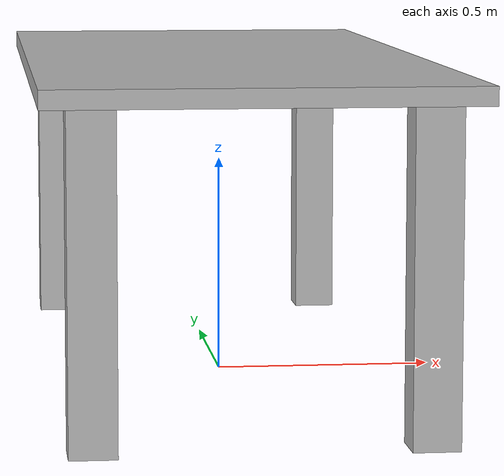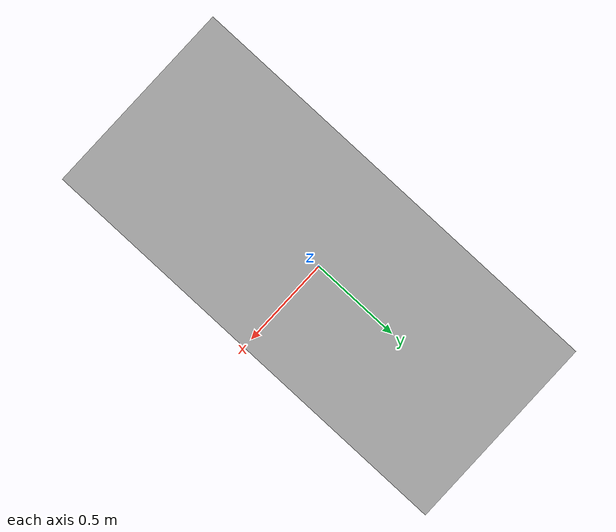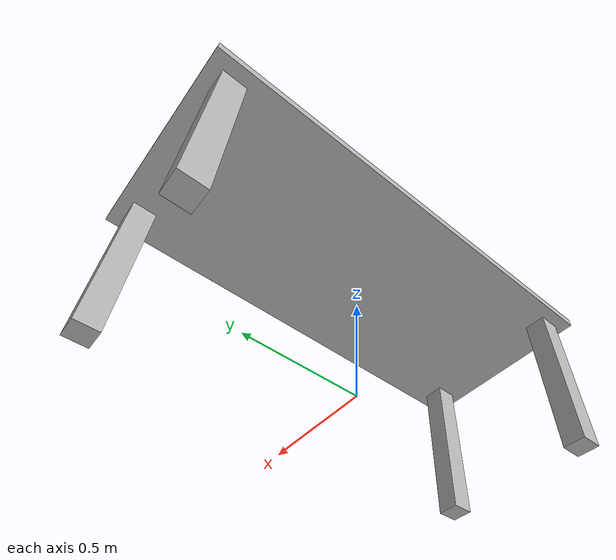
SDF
<?xml version="1.0" ?>
<sdf version="1.6">
  <model name="rwc2024/desk">
    <static>true</static>
    <link name="1_link">
      <collision name="1_col">
        <geometry>
          <box>
            <size>0.905 2.015 0.04</size>
          </box>
        </geometry>
      </collision>
      <visual name="1_vis">
        <geometry>
          <box>
            <size>0.905 2.015 0.04</size>
          </box>
        </geometry>
      </visual>
      <pose>0.0 0.0 0.725 0 0 0</pose>
    </link>
    <link name="2_link">
      <collision name="2_col">
        <geometry>
          <box>
            <size>0.1 0.1 0.705</size>
          </box>
        </geometry>
      </collision>
      <visual name="2_vis">
        <geometry>
          <box>
            <size>0.1 0.1 0.705</size>
          </box>
        </geometry>
      </visual>
      <pose>-0.3475 -0.9025 0.3525 0 0 0</pose>
    </link>
    <link name="3_link">
      <collision name="3_col">
        <geometry>
          <box>
            <size>0.1 0.1 0.705</size>
          </box>
        </geometry>
      </collision>
      <visual name="3_vis">
        <geometry>
          <box>
            <size>0.1 0.1 0.705</size>
          </box>
        </geometry>
      </visual>
      <pose>0.3475 -0.9025 0.3525 0 0 0</pose>
    </link>
    <link name="4_link">
      <collision name="4_col">
        <geometry>
          <box>
            <size>0.1 0.1 0.705</size>
          </box>
        </geometry>
      </collision>
      <visual name="4_vis">
        <geometry>
          <box>
            <size>0.1 0.1 0.705</size>
          </box>
        </geometry>
      </visual>
      <pose>-0.3475 0.9025 0.3525 0 0 0</pose>
    </link>
    <link name="5_link">
      <collision name="5_col">
        <geometry>
          <box>
            <size>0.1 0.1 0.705</size>
          </box>
        </geometry>
      </collision>
      <visual name="5_vis">
        <geometry>
          <box>
            <size>0.1 0.1 0.705</size>
          </box>
        </geometry>
      </visual>
      <pose>0.3475 0.9025 0.3525 0 0 0</pose>
    </link>
    <link name="on_top_of">
      <virtual_volume name="on_top_of_vv">
        <geometry>
          <box>
            <size>0.885 1.955 0.25</size>
          </box>
        </geometry>
        <pose>0.0 0.0 0.89 0 0 0</pose>
      </virtual_volume>
    </link>
    <link name="in_front_of">
      <virtual_volume name="in_front_of_vv">
        <geometry>
          <box>
            <size>0.2 1.815 0.01</size>
          </box>
        </geometry>
        <pose>0.9525 0.0 0.005 0 0 0</pose>
      </virtual_volume>
    </link>
  </model>
</sdf>
